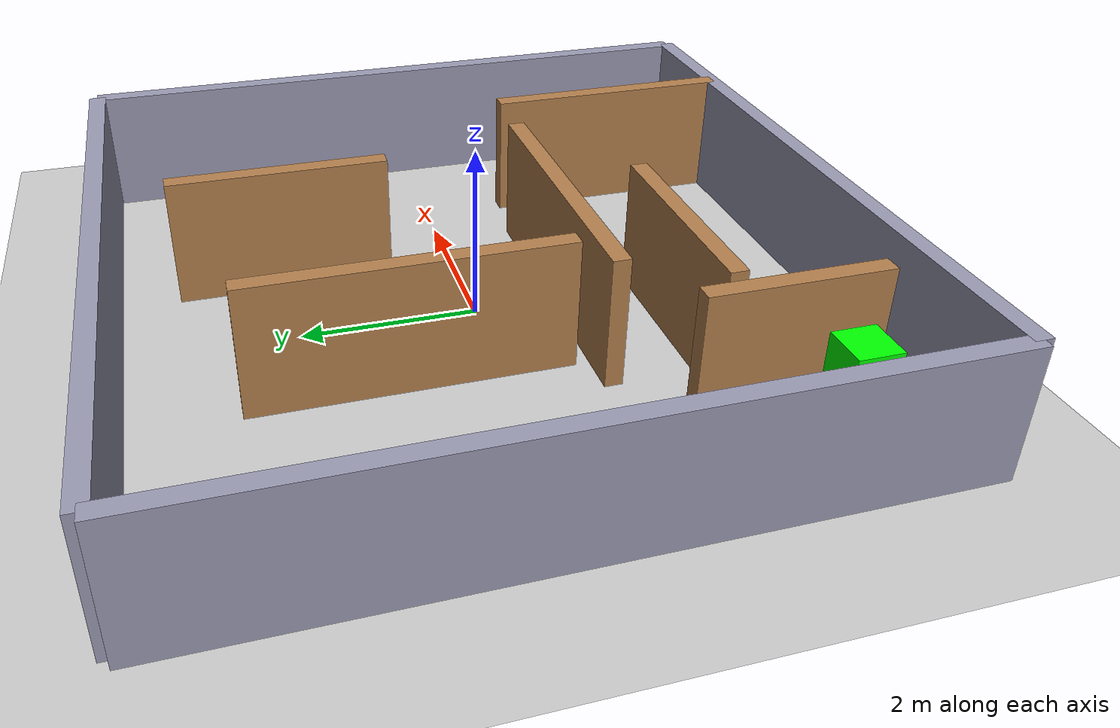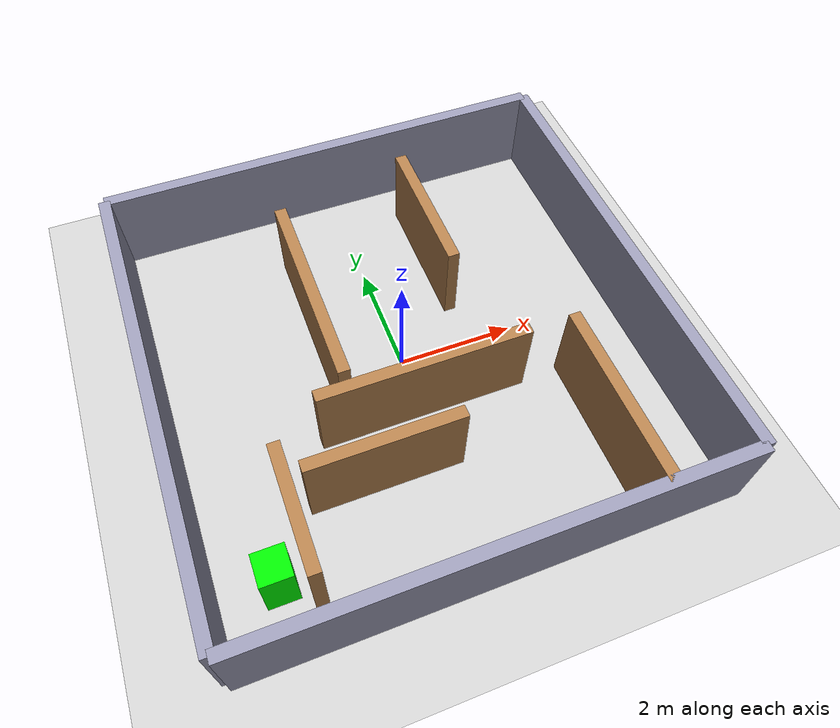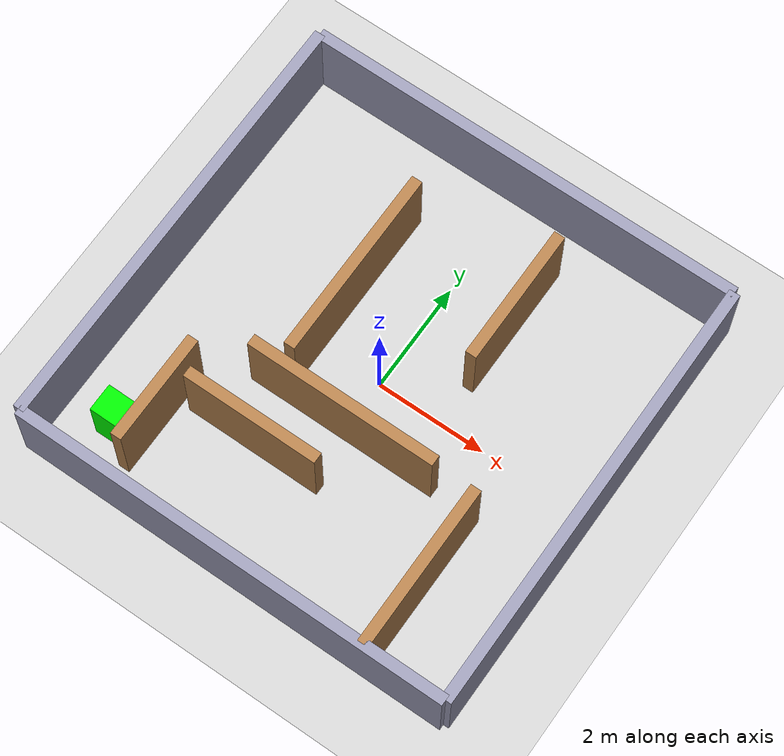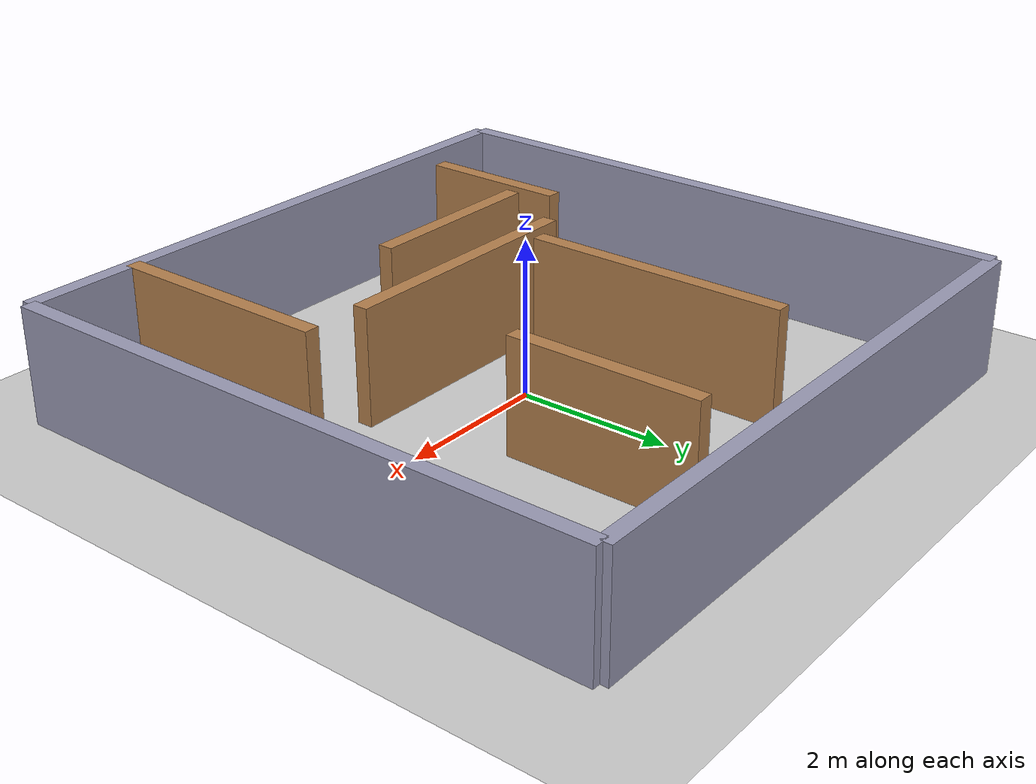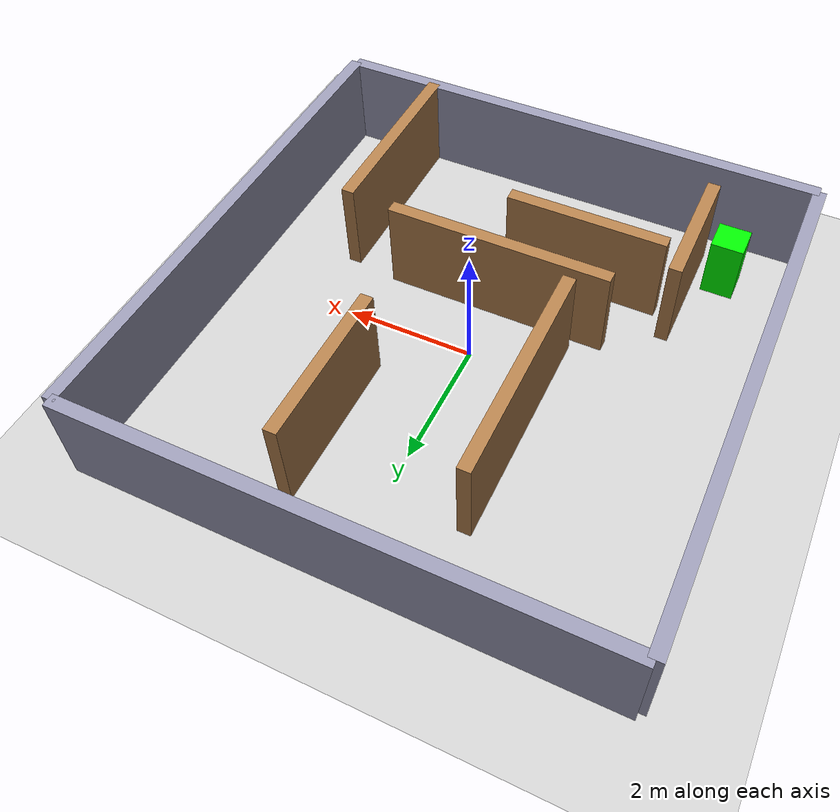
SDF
<sdf version="1.6">
 <world name="mecanum_drive">
  <physics name="1ms" type="ignored">
   <max_step_size>0.001</max_step_size>
   <real_time_factor>1.0</real_time_factor>
  </physics>
  <plugin filename="gz-sim-physics-system" name="gz::sim::systems::Physics"/>
  <plugin filename="gz-sim-user-commands-system" name="gz::sim::systems::UserCommands"/>
  <plugin filename="gz-sim-scene-broadcaster-system" name="gz::sim::systems::SceneBroadcaster"/>
  <plugin filename="gz-sim-sensors-system" name="gz::sim::systems::Sensors">
   <render_engine>ogre</render_engine>
  </plugin>
  <plugin filename="gz-sim-imu-system" name="gz::sim::systems::Imu"/>
  <light type="directional" name="sun">
   <pose>0 0 10 0 0 0</pose>
   <diffuse>1 1 1 1</diffuse>
   <specular>0.5 0.5 0.5 1</specular>
   <attenuation>
    <range>1000</range>
    <constant>0.9</constant>
    <linear>0.01</linear>
    <quadratic>0.001</quadratic>
   </attenuation>
   <direction>-0.5 0.1 -0.9</direction>
  </light>
  <model name="ground_plane">
   <static>true</static>
   <link name="link">
    <collision name="collision">
     <geometry><plane><normal>0 0 1</normal><size>100 100</size></plane></geometry>
     <surface><friction><ode><mu>50</mu></ode></friction></surface>
    </collision>
    <visual name="visual">
     <geometry><plane><normal>0 0 1</normal><size>100 100</size></plane></geometry>
     <material>
      <ambient>0.8 0.8 0.8 1</ambient>
      <diffuse>0.8 0.8 0.8 1</diffuse>
      <specular>0.8 0.8 0.8 1</specular>
     </material>
    </visual>
   </link>
  </model>
  <model name="maze_wall_north">
   <pose>0 -4 0.75 0 0 0</pose>
   <static>true</static>
   <link name="link">
    <collision name="collision"><geometry><box><size>8 0.2 1.5</size></box></geometry></collision>
    <visual name="visual">
     <geometry><box><size>8 0.2 1.5</size></box></geometry>
     <material><ambient>0.6 0.6 0.7 1</ambient><diffuse>0.6 0.6 0.7 1</diffuse></material>
    </visual>
   </link>
  </model>
  <model name="maze_wall_south">
   <pose>0 4 0.75 0 0 0</pose>
   <static>true</static>
   <link name="link">
    <collision name="collision"><geometry><box><size>8 0.2 1.5</size></box></geometry></collision>
    <visual name="visual">
     <geometry><box><size>8 0.2 1.5</size></box></geometry>
     <material><ambient>0.6 0.6 0.7 1</ambient><diffuse>0.6 0.6 0.7 1</diffuse></material>
    </visual>
   </link>
  </model>
  <model name="maze_wall_east">
   <pose>4 0 0.75 0 0 0</pose>
   <static>true</static>
   <link name="link">
    <collision name="collision"><geometry><box><size>0.2 8 1.5</size></box></geometry></collision>
    <visual name="visual">
     <geometry><box><size>0.2 8 1.5</size></box></geometry>
     <material><ambient>0.6 0.6 0.7 1</ambient><diffuse>0.6 0.6 0.7 1</diffuse></material>
    </visual>
   </link>
  </model>
  <model name="maze_wall_west">
   <pose>-4 0 0.75 0 0 0</pose>
   <static>true</static>
   <link name="link">
    <collision name="collision"><geometry><box><size>0.2 8 1.5</size></box></geometry></collision>
    <visual name="visual">
     <geometry><box><size>0.2 8 1.5</size></box></geometry>
     <material><ambient>0.6 0.6 0.7 1</ambient><diffuse>0.6 0.6 0.7 1</diffuse></material>
    </visual>
   </link>
  </model>
  <model name="maze_wall_1">
   <pose>1.2 2 0.75 0 0 0</pose>
   <static>true</static>
   <link name="link">
    <collision name="collision"><geometry><box><size>0.2 2.5 1.5</size></box></geometry></collision>
    <visual name="visual">
     <geometry><box><size>0.2 2.5 1.5</size></box></geometry>
     <material><ambient>0.7 0.5 0.3 1</ambient><diffuse>0.7 0.5 0.3 1</diffuse></material>
    </visual>
   </link>
  </model>
  <model name="maze_wall_2">
   <pose>-1.2 1 0.75 0 0 0</pose>
   <static>true</static>
   <link name="link">
    <collision name="collision"><geometry><box><size>0.2 3.5 1.5</size></box></geometry></collision>
    <visual name="visual">
     <geometry><box><size>0.2 3.5 1.5</size></box></geometry>
     <material><ambient>0.7 0.5 0.3 1</ambient><diffuse>0.7 0.5 0.3 1</diffuse></material>
    </visual>
   </link>
  </model>
  <model name="maze_wall_3">
   <pose>0 -1 0.75 0 0 0</pose>
   <static>true</static>
   <link name="link">
    <collision name="collision"><geometry><box><size>3.5 0.2 1.5</size></box></geometry></collision>
    <visual name="visual">
     <geometry><box><size>3.5 0.2 1.5</size></box></geometry>
     <material><ambient>0.7 0.5 0.3 1</ambient><diffuse>0.7 0.5 0.3 1</diffuse></material>
    </visual>
   </link>
  </model>
  <model name="maze_wall_4">
   <pose>2.5 -2.5 0.75 0 0 0</pose>
   <static>true</static>
   <link name="link">
    <collision name="collision"><geometry><box><size>0.2 3 1.5</size></box></geometry></collision>
    <visual name="visual">
     <geometry><box><size>0.2 3 1.5</size></box></geometry>
     <material><ambient>0.7 0.5 0.3 1</ambient><diffuse>0.7 0.5 0.3 1</diffuse></material>
    </visual>
   </link>
  </model>
  <model name="maze_wall_5">
   <pose>-2.5 -2.5 0.75 0 0 0</pose>
   <static>true</static>
   <link name="link">
    <collision name="collision"><geometry><box><size>0.2 2 1.5</size></box></geometry></collision>
    <visual name="visual">
     <geometry><box><size>0.2 2 1.5</size></box></geometry>
     <material><ambient>0.7 0.5 0.3 1</ambient><diffuse>0.7 0.5 0.3 1</diffuse></material>
    </visual>
   </link>
  </model>
  <model name="maze_wall_6">
   <pose>-1 -2 0.75 0 0 0</pose>
   <static>true</static>
   <link name="link">
    <collision name="collision"><geometry><box><size>2.5 0.2 1.5</size></box></geometry></collision>
    <visual name="visual">
     <geometry><box><size>2.5 0.2 1.5</size></box></geometry>
     <material><ambient>0.7 0.5 0.3 1</ambient><diffuse>0.7 0.5 0.3 1</diffuse></material>
    </visual>
   </link>
  </model>
  <model name="maze_exit_marker">
   <pose>-3 -3 0.5 0 0 0</pose>
   <static>true</static>
   <link name="link">
    <collision name="collision"><geometry><box><size>0.5 0.5 1</size></box></geometry></collision>
    <visual name="visual">
     <geometry><box><size>0.5 0.5 1</size></box></geometry>
     <material>
      <ambient>0.0 1.0 0.0 1</ambient>
      <diffuse>0.0 1.0 0.0 1</diffuse>
      <emissive>0.0 0.5 0.0 1</emissive>
     </material>
    </visual>
   </link>
  </model>
 </world>
</sdf>
